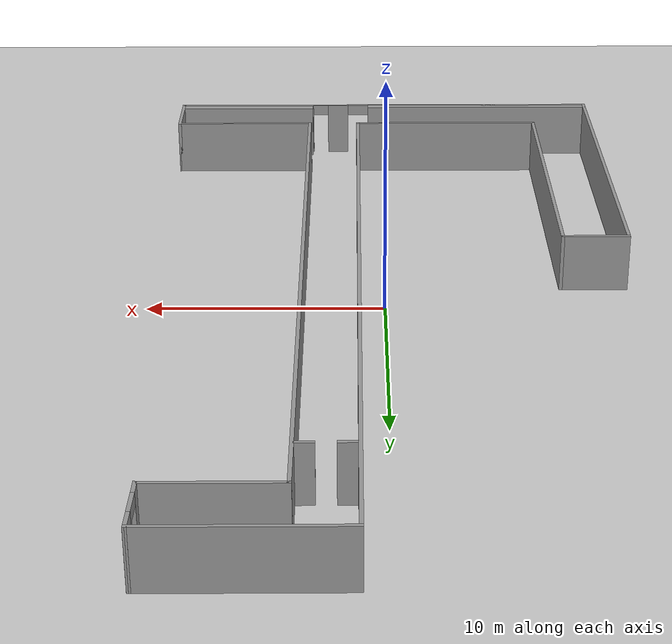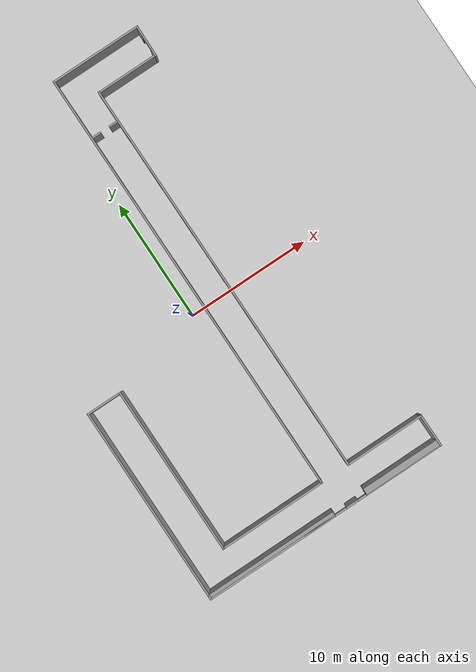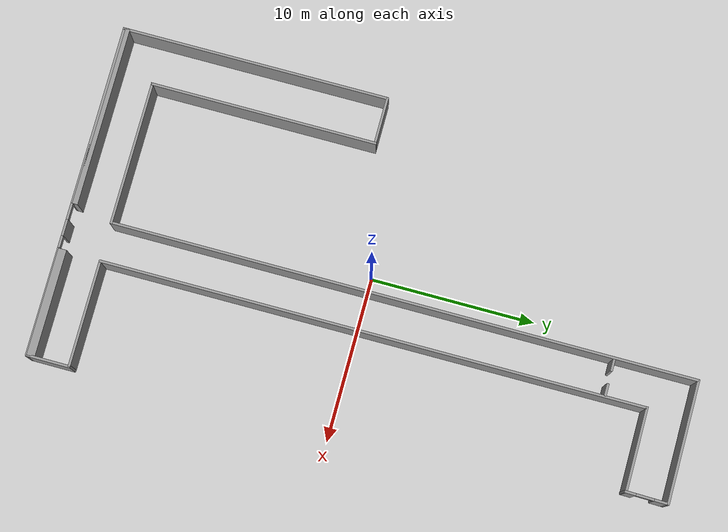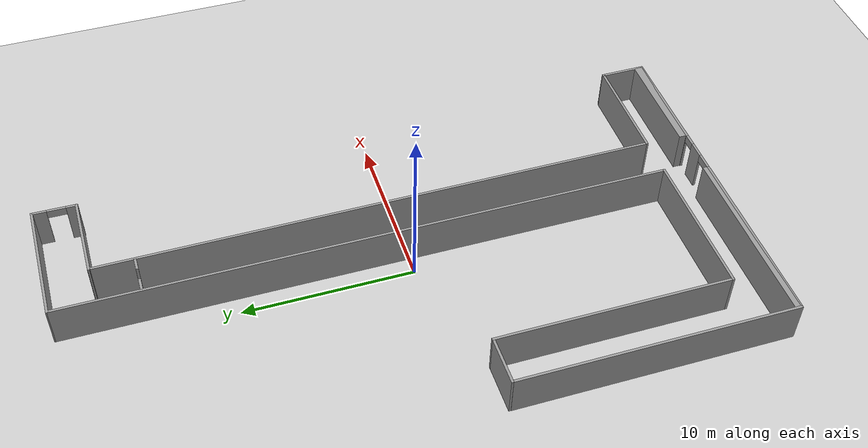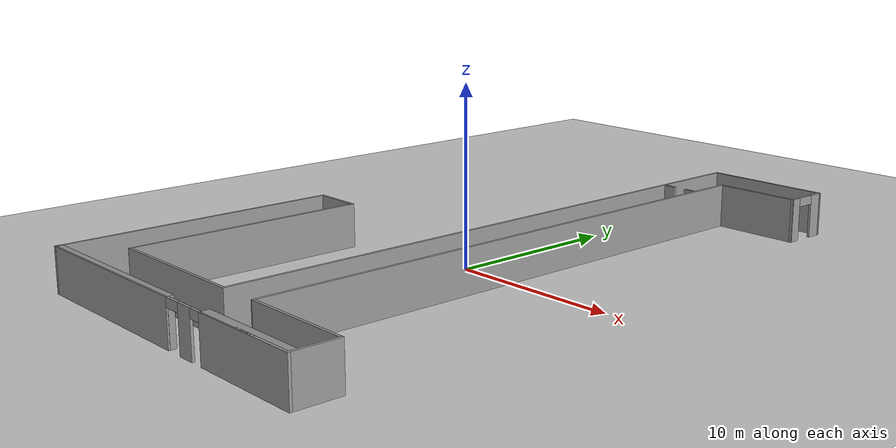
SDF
<?xml version="1.0" ?>
<sdf version="1.4">
  <world name="default">
    <include>
      <uri>model://ground_plane</uri>
    </include>
    <include>
      <uri>model://sun</uri>
    </include>
    <include>
      <uri>model://singtel_floorplan/singtel_floor4_in</uri>
      <name>singtel_floor4_in</name>
    </include>
  </world>
</sdf>

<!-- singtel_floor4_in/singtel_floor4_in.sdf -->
<sdf version='1.6'>
  <model name='singtel_floor4_in'>
    <pose frame=''>-0.242638 0.934227 0 0 -0 0</pose>
    <link name='Wall_10'>
      <collision name='Wall_10_Collision'>
        <geometry>
          <box>
            <size>7.5 0.15 2.5</size>
          </box>
        </geometry>
        <pose frame=''>0 0 1.25 0 -0 0</pose>
      </collision>
      <visual name='Wall_10_Visual'>
        <pose frame=''>0 0 1.25 0 -0 0</pose>
        <geometry>
          <box>
            <size>7.5 0.15 2.5</size>
          </box>
        </geometry>
        <material>
          <script>
            <uri>file://media/materials/scripts/gazebo.material</uri>
            <name>Gazebo/Grey</name>
          </script>
          <ambient>1 1 1 1</ambient>
        </material>
        <meta>
          <layer>0</layer>
        </meta>
      </visual>
      <pose frame=''>5.00711 18.9855 0 0 -0 0</pose>
    </link>
    <link name='Wall_12'>
      <pose frame=''>8.66002 17.7266 0 0 -0 -1.58834</pose>
      <visual name='Wall_12_Visual_0'>
        <pose frame=''>-0.884037 0 1.25 0 -0 0</pose>
        <geometry>
          <box>
            <size>0.900178 0.15 2.5</size>
          </box>
        </geometry>
        <material>
          <script>
            <uri>file://media/materials/scripts/gazebo.material</uri>
            <name>Gazebo/Grey</name>
          </script>
          <ambient>1 1 1 1</ambient>
        </material>
        <meta>
          <layer>0</layer>
        </meta>
      </visual>
      <collision name='Wall_12_Collision_0'>
        <geometry>
          <box>
            <size>0.900178 0.15 2.5</size>
          </box>
        </geometry>
        <pose frame=''>-0.884037 0 1.25 0 -0 0</pose>
      </collision>
      <visual name='Wall_12_Visual_1'>
        <pose frame=''>0.996267 0 1.25 0 -0 0</pose>
        <geometry>
          <box>
            <size>0.675717 0.15 2.5</size>
          </box>
        </geometry>
        <material>
          <script>
            <uri>file://media/materials/scripts/gazebo.material</uri>
            <name>Gazebo/Grey</name>
          </script>
          <ambient>1 1 1 1</ambient>
        </material>
        <meta>
          <layer>0</layer>
        </meta>
      </visual>
      <collision name='Wall_12_Collision_1'>
        <geometry>
          <box>
            <size>0.675717 0.15 2.5</size>
          </box>
        </geometry>
        <pose frame=''>0.996267 0 1.25 0 -0 0</pose>
      </collision>
      <visual name='Wall_12_Visual_2'>
        <pose frame=''>0.11223 0 2.25 0 -0 0</pose>
        <geometry>
          <box>
            <size>1.09236 0.15 0.5</size>
          </box>
        </geometry>
        <material>
          <script>
            <uri>file://media/materials/scripts/gazebo.material</uri>
            <name>Gazebo/Grey</name>
          </script>
          <ambient>1 1 1 1</ambient>
        </material>
        <meta>
          <layer>0</layer>
        </meta>
      </visual>
      <collision name='Wall_12_Collision_2'>
        <geometry>
          <box>
            <size>1.09236 0.15 0.5</size>
          </box>
        </geometry>
        <pose frame=''>0.11223 0 2.25 0 -0 0</pose>
      </collision>
    </link>
    <link name='Wall_13'>
      <collision name='Wall_13_Collision'>
        <geometry>
          <box>
            <size>5.13525 0.15 2.5</size>
          </box>
        </geometry>
        <pose frame=''>0 0 1.25 0 -0 0</pose>
      </collision>
      <visual name='Wall_13_Visual'>
        <pose frame=''>0 0 1.25 0 -0 0</pose>
        <geometry>
          <box>
            <size>5.13525 0.15 2.5</size>
          </box>
        </geometry>
        <material>
          <script>
            <uri>file://media/materials/scripts/gazebo.material</uri>
            <name>Gazebo/Grey</name>
          </script>
          <ambient>1 1 1 1</ambient>
        </material>
        <meta>
          <layer>0</layer>
        </meta>
      </visual>
      <pose frame=''>6.1453 16.4824 0 0 -0 3.14159</pose>
    </link>
    <link name='Wall_15'>
      <collision name='Wall_15_Collision'>
        <geometry>
          <box>
            <size>33.0322 0.15 2.5</size>
          </box>
        </geometry>
        <pose frame=''>0 0 1.25 0 -0 0</pose>
      </collision>
      <visual name='Wall_15_Visual'>
        <pose frame=''>0 0 1.25 0 -0 0</pose>
        <geometry>
          <box>
            <size>33.0322 0.15 2.5</size>
          </box>
        </geometry>
        <material>
          <script>
            <uri>file://media/materials/scripts/gazebo.material</uri>
            <name>Gazebo/Grey</name>
          </script>
          <ambient>1 1 1 1</ambient>
        </material>
        <meta>
          <layer>0</layer>
        </meta>
      </visual>
      <pose frame=''>3.67477 0.026604 0 0 -0 -1.56945</pose>
    </link>
    <link name='Wall_17'>
      <collision name='Wall_17_Collision'>
        <geometry>
          <box>
            <size>6.5 0.15 2.5</size>
          </box>
        </geometry>
        <pose frame=''>0 0 1.25 0 -0 0</pose>
      </collision>
      <visual name='Wall_17_Visual'>
        <pose frame=''>0 0 1.25 0 -0 0</pose>
        <geometry>
          <box>
            <size>6.5 0.15 2.5</size>
          </box>
        </geometry>
        <material>
          <script>
            <uri>file://media/materials/scripts/gazebo.material</uri>
            <name>Gazebo/Grey</name>
          </script>
          <ambient>1 1 1 1</ambient>
        </material>
        <meta>
          <layer>0</layer>
        </meta>
      </visual>
      <pose frame=''>6.87186 -16.4145 0 0 -0 0</pose>
    </link>
    <link name='Wall_19'>
      <pose frame=''>0.061936 -18.9845 0 0 -0 3.14159</pose>
      <visual name='Wall_19_Visual_0'>
        <pose frame=''>-6.81366 0 1.25 0 -0 0</pose>
        <geometry>
          <box>
            <size>6.62268 0.15 2.5</size>
          </box>
        </geometry>
        <material>
          <script>
            <uri>file://media/materials/scripts/gazebo.material</uri>
            <name>Gazebo/Grey</name>
          </script>
          <ambient>1 1 1 1</ambient>
        </material>
        <meta>
          <layer>0</layer>
        </meta>
      </visual>
      <collision name='Wall_19_Collision_0'>
        <geometry>
          <box>
            <size>6.62268 0.15 2.5</size>
          </box>
        </geometry>
        <pose frame=''>-6.81366 0 1.25 0 -0 0</pose>
      </collision>
      <visual name='Wall_19_Visual_1'>
        <pose frame=''>-2.26497 0 1.25 0 -0 0</pose>
        <geometry>
          <box>
            <size>1.00623 0.15 2.5</size>
          </box>
        </geometry>
        <material>
          <script>
            <uri>file://media/materials/scripts/gazebo.material</uri>
            <name>Gazebo/Grey</name>
          </script>
          <ambient>1 1 1 1</ambient>
        </material>
        <meta>
          <layer>0</layer>
        </meta>
      </visual>
      <collision name='Wall_19_Collision_1'>
        <geometry>
          <box>
            <size>1.00623 0.15 2.5</size>
          </box>
        </geometry>
        <pose frame=''>-2.26497 0 1.25 0 -0 0</pose>
      </collision>
      <visual name='Wall_19_Visual_2'>
        <pose frame=''>4.68157 0 1.25 0 -0 0</pose>
        <geometry>
          <box>
            <size>10.8869 0.15 2.5</size>
          </box>
        </geometry>
        <material>
          <script>
            <uri>file://media/materials/scripts/gazebo.material</uri>
            <name>Gazebo/Grey</name>
          </script>
          <ambient>1 1 1 1</ambient>
        </material>
        <meta>
          <layer>0</layer>
        </meta>
      </visual>
      <collision name='Wall_19_Collision_2'>
        <geometry>
          <box>
            <size>10.8869 0.15 2.5</size>
          </box>
        </geometry>
        <pose frame=''>4.68157 0 1.25 0 -0 0</pose>
      </collision>
      <visual name='Wall_19_Visual_3'>
        <pose frame=''>-3.1352 0 2.25 0 -0 0</pose>
        <geometry>
          <box>
            <size>0.734232 0.15 0.5</size>
          </box>
        </geometry>
        <material>
          <script>
            <uri>file://media/materials/scripts/gazebo.material</uri>
            <name>Gazebo/Grey</name>
          </script>
          <ambient>1 1 1 1</ambient>
        </material>
        <meta>
          <layer>0</layer>
        </meta>
      </visual>
      <collision name='Wall_19_Collision_3'>
        <geometry>
          <box>
            <size>0.734232 0.15 0.5</size>
          </box>
        </geometry>
        <pose frame=''>-3.1352 0 2.25 0 -0 0</pose>
      </collision>
      <visual name='Wall_19_Visual_4'>
        <pose frame=''>-1.26186 0 2.25 0 -0 0</pose>
        <geometry>
          <box>
            <size>1 0.15 0.5</size>
          </box>
        </geometry>
        <material>
          <script>
            <uri>file://media/materials/scripts/gazebo.material</uri>
            <name>Gazebo/Grey</name>
          </script>
          <ambient>1 1 1 1</ambient>
        </material>
        <meta>
          <layer>0</layer>
        </meta>
      </visual>
      <collision name='Wall_19_Collision_4'>
        <geometry>
          <box>
            <size>1 0.15 0.5</size>
          </box>
        </geometry>
        <pose frame=''>-1.26186 0 2.25 0 -0 0</pose>
      </collision>
    </link>
    <link name='Wall_21'>
      <collision name='Wall_21_Collision'>
        <geometry>
          <box>
            <size>2.72 0.15 2.5</size>
          </box>
        </geometry>
        <pose frame=''>0 0 1.25 0 -0 0</pose>
      </collision>
      <visual name='Wall_21_Visual'>
        <pose frame=''>0 0 1.25 0 -0 0</pose>
        <geometry>
          <box>
            <size>2.72 0.15 2.5</size>
          </box>
        </geometry>
        <material>
          <script>
            <uri>file://media/materials/scripts/gazebo.material</uri>
            <name>Gazebo/Grey</name>
          </script>
          <ambient>1 1 1 1</ambient>
        </material>
        <meta>
          <layer>0</layer>
        </meta>
      </visual>
      <pose frame=''>10.1119 -17.6995 0 0 -0 1.5708</pose>
    </link>
    <link name='Wall_23'>
      <collision name='Wall_23_Collision'>
        <geometry>
          <box>
            <size>6.5 0.5 2.5</size>
          </box>
        </geometry>
        <pose frame=''>0 0 1.25 0 -0 0</pose>
      </collision>
      <visual name='Wall_23_Visual'>
        <pose frame=''>0 0 1.25 0 -0 0</pose>
        <geometry>
          <box>
            <size>6.5 0.5 2.5</size>
          </box>
        </geometry>
        <material>
          <script>
            <uri>file://media/materials/scripts/gazebo.material</uri>
            <name>Gazebo/Grey</name>
          </script>
          <ambient>1 1 1 1</ambient>
        </material>
        <meta>
          <layer>0</layer>
        </meta>
      </visual>
      <pose frame=''>6.84811 -18.7385 0 0 -0 0</pose>
    </link>
    <link name='Wall_25'>
      <collision name='Wall_25_Collision'>
        <geometry>
          <box>
            <size>11 0.33 2.5</size>
          </box>
        </geometry>
        <pose frame=''>0 0 1.25 0 -0 0</pose>
      </collision>
      <visual name='Wall_25_Visual'>
        <pose frame=''>0 0 1.25 0 -0 0</pose>
        <geometry>
          <box>
            <size>11 0.33 2.5</size>
          </box>
        </geometry>
        <material>
          <script>
            <uri>file://media/materials/scripts/gazebo.material</uri>
            <name>Gazebo/Grey</name>
          </script>
          <ambient>1 1 1 1</ambient>
        </material>
        <meta>
          <layer>0</layer>
        </meta>
      </visual>
      <pose frame=''>-4.66631 -18.8061 0 0 -0 0</pose>
    </link>
    <link name='Wall_27'>
      <collision name='Wall_27_Collision'>
        <geometry>
          <box>
            <size>16.25 0.15 2.5</size>
          </box>
        </geometry>
        <pose frame=''>0 0 1.25 0 -0 0</pose>
      </collision>
      <visual name='Wall_27_Visual'>
        <pose frame=''>0 0 1.25 0 -0 0</pose>
        <geometry>
          <box>
            <size>16.25 0.15 2.5</size>
          </box>
        </geometry>
        <material>
          <script>
            <uri>file://media/materials/scripts/gazebo.material</uri>
            <name>Gazebo/Grey</name>
          </script>
          <ambient>1 1 1 1</ambient>
        </material>
        <meta>
          <layer>0</layer>
        </meta>
      </visual>
      <pose frame=''>-10.1119 -10.9368 0 0 -0 -1.5708</pose>
    </link>
    <link name='Wall_31'>
      <collision name='Wall_31_Collision'>
        <geometry>
          <box>
            <size>2.9 0.15 2.5</size>
          </box>
        </geometry>
        <pose frame=''>0 0 1.25 0 -0 0</pose>
      </collision>
      <visual name='Wall_31_Visual'>
        <pose frame=''>0 0 1.25 0 -0 0</pose>
        <geometry>
          <box>
            <size>2.9 0.15 2.5</size>
          </box>
        </geometry>
        <material>
          <script>
            <uri>file://media/materials/scripts/gazebo.material</uri>
            <name>Gazebo/Grey</name>
          </script>
          <ambient>1 1 1 1</ambient>
        </material>
        <meta>
          <layer>0</layer>
        </meta>
      </visual>
      <pose frame=''>-8.7275 -2.7605 0 0 -0 3.14159</pose>
    </link>
    <link name='Wall_36'>
      <collision name='Wall_36_Collision'>
        <geometry>
          <box>
            <size>13.825 0.15 2.5</size>
          </box>
        </geometry>
        <pose frame=''>0 0 1.25 0 -0 0</pose>
      </collision>
      <visual name='Wall_36_Visual'>
        <pose frame=''>0 0 1.25 0 -0 0</pose>
        <geometry>
          <box>
            <size>13.825 0.15 2.5</size>
          </box>
        </geometry>
        <material>
          <script>
            <uri>file://media/materials/scripts/gazebo.material</uri>
            <name>Gazebo/Grey</name>
          </script>
          <ambient>1 1 1 1</ambient>
        </material>
        <meta>
          <layer>0</layer>
        </meta>
      </visual>
      <pose frame=''>-7.31037 -9.59658 0 0 -0 1.5708</pose>
    </link>
    <link name='Wall_4'>
      <collision name='Wall_4_Collision'>
        <geometry>
          <box>
            <size>8.79 0.15 2.5</size>
          </box>
        </geometry>
        <pose frame=''>0 0 1.25 0 -0 0</pose>
      </collision>
      <visual name='Wall_4_Visual'>
        <pose frame=''>0 0 1.25 0 -0 0</pose>
        <geometry>
          <box>
            <size>8.79 0.15 2.5</size>
          </box>
        </geometry>
        <material>
          <script>
            <uri>file://media/materials/scripts/gazebo.material</uri>
            <name>Gazebo/Grey</name>
          </script>
          <ambient>1 1 1 1</ambient>
        </material>
        <meta>
          <layer>0</layer>
        </meta>
      </visual>
      <pose frame=''>-2.99037 -16.4341 0 0 -0 3.14159</pose>
    </link>
    <link name='Wall_43'>
      <collision name='Wall_43_Collision'>
        <geometry>
          <box>
            <size>0.75 0.15 2.5</size>
          </box>
        </geometry>
        <pose frame=''>0 0 1.25 0 -0 0</pose>
      </collision>
      <visual name='Wall_43_Visual'>
        <pose frame=''>0 0 1.25 0 -0 0</pose>
        <geometry>
          <box>
            <size>0.75 0.15 2.5</size>
          </box>
        </geometry>
        <material>
          <script>
            <uri>file://media/materials/scripts/gazebo.material</uri>
            <name>Gazebo/Grey</name>
          </script>
          <ambient>1 1 1 1</ambient>
        </material>
        <meta>
          <layer>0</layer>
        </meta>
      </visual>
      <pose frame=''>1.75805 13.9742 0 0 -0 0</pose>
    </link>
    <link name='Wall_46'>
      <collision name='Wall_46_Collision'>
        <geometry>
          <box>
            <size>0.75 0.15 2.5</size>
          </box>
        </geometry>
        <pose frame=''>0 0 1.25 0 -0 0</pose>
      </collision>
      <visual name='Wall_46_Visual'>
        <pose frame=''>0 0 1.25 0 -0 0</pose>
        <geometry>
          <box>
            <size>0.75 0.15 2.5</size>
          </box>
        </geometry>
        <material>
          <script>
            <uri>file://media/materials/scripts/gazebo.material</uri>
            <name>Gazebo/Grey</name>
          </script>
          <ambient>1 1 1 1</ambient>
        </material>
        <meta>
          <layer>0</layer>
        </meta>
      </visual>
      <pose frame=''>3.24561 13.9742 0 0 -0 0</pose>
    </link>
    <link name='Wall_7'>
      <collision name='Wall_7_Collision'>
        <geometry>
          <box>
            <size>35.5 0.15 2.5</size>
          </box>
        </geometry>
        <pose frame=''>0 0 1.25 0 -0 0</pose>
      </collision>
      <visual name='Wall_7_Visual'>
        <pose frame=''>0 0 1.25 0 -0 0</pose>
        <geometry>
          <box>
            <size>35.5 0.15 2.5</size>
          </box>
        </geometry>
        <material>
          <script>
            <uri>file://media/materials/scripts/gazebo.material</uri>
            <name>Gazebo/Grey</name>
          </script>
          <ambient>1 1 1 1</ambient>
        </material>
        <meta>
          <layer>0</layer>
        </meta>
      </visual>
      <pose frame=''>1.32963 1.24092 0 0 -0 1.5708</pose>
    </link>
    <static>1</static>
  </model>
</sdf>
